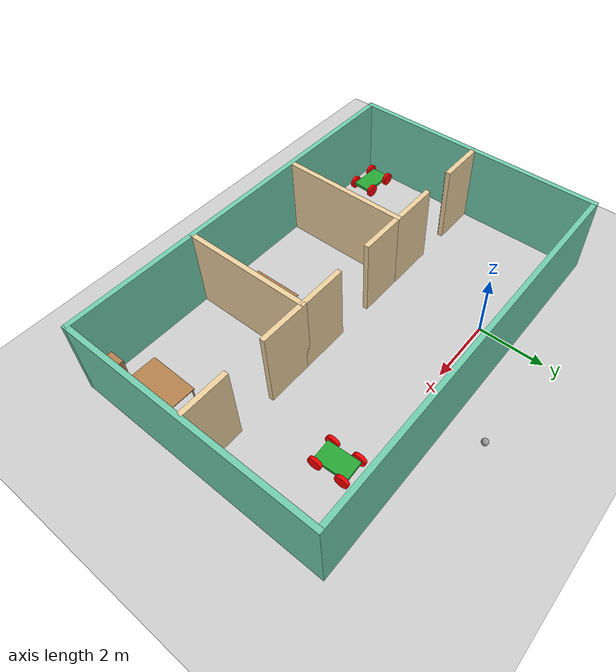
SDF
<sdf version="1.6">
 <world name="default">
  <plugin name="hello" filename="libwelcome_message.so"/>
  <light name="sun" type="directional">
   <pose>0 0 10 0 -0 0</pose>
   <diffuse>0.8 0.8 0.8 1</diffuse>
   <specular>0.2 0.2 0.2 1</specular>
   <attenuation>
    <range>1000</range>
    <constant>0.9</constant>
    <linear>0.01</linear>
    <quadratic>0.001</quadratic>
   </attenuation>
   <direction>-0.5 0.1 -0.9</direction>
  </light>
  <model name="ground_plane">
   <static>1</static>
   <link name="link">
    <collision name="collision">
     <geometry><plane><normal>0 0 1</normal><size>100 100</size></plane></geometry>
     <surface><friction><ode><mu>100</mu><mu2>50</mu2></ode></friction></surface>
    </collision>
    <visual name="visual">
     <cast_shadows>0</cast_shadows>
     <geometry><plane><normal>0 0 1</normal><size>100 100</size></plane></geometry>
     <material>
      <script><uri>file://media/materials/scripts/gazebo.material</uri><name>Gazebo/Grey</name></script>
     </material>
    </visual>
   </link>
  </model>
  <gravity>0 0 -9.8</gravity>
  <magnetic_field>6e-06 2.3e-05 -4.2e-05</magnetic_field>
  <atmosphere type="adiabatic"/>
  <physics name="default_physics" default="0" type="ode">
   <max_step_size>0.001</max_step_size>
   <real_time_factor>1</real_time_factor>
   <real_time_update_rate>1000</real_time_update_rate>
  </physics>
  <scene><ambient>0.4 0.4 0.4 1</ambient><background>0.7 0.7 0.7 1</background><shadows>1</shadows></scene>
  <spherical_coordinates>
   <surface_model>EARTH_WGS84</surface_model>
   <latitude_deg>0</latitude_deg>
   <longitude_deg>0</longitude_deg>
   <elevation>0</elevation>
   <heading_deg>0</heading_deg>
  </spherical_coordinates>
  <model name="RobotOffice">
   <pose>1.99675 -2.98962 0 0 -0 0</pose>
   <link name="Wall_17">
    <collision name="Wall_17_Collision">
     <geometry><box><size>12.0004 0.15 2.5</size></box></geometry>
     <pose>0 0 1.25 0 -0 0</pose>
    </collision>
    <visual name="Wall_17_Visual">
     <pose>0 0 1.25 0 -0 0</pose>
     <geometry><box><size>12.0004 0.15 2.5</size></box></geometry>
     <material>
      <script><uri>file://media/materials/scripts/gazebo.material</uri><name>Gazebo/Grey</name></script>
      <ambient>0.435294 0.796078 0.67451 1</ambient>
     </material>
     <meta><layer>0</layer></meta>
    </visual>
    <pose>-2e-06 3.925 0 0 0 -3.14159</pose>
   </link>
   <link name="Wall_19">
    <collision name="Wall_19_Collision">
     <geometry><box><size>8 0.15 2.5</size></box></geometry>
     <pose>0 0 1.25 0 -0 0</pose>
    </collision>
    <visual name="Wall_19_Visual">
     <pose>0 0 1.25 0 -0 0</pose>
     <geometry><box><size>8 0.15 2.5</size></box></geometry>
     <material>
      <script><uri>file://media/materials/scripts/gazebo.material</uri><name>Gazebo/Grey</name></script>
      <ambient>0.435294 0.796078 0.67451 1</ambient>
     </material>
     <meta><layer>0</layer></meta>
    </visual>
    <pose>-5.92522 -3.8e-05 0 0 0 -1.5708</pose>
   </link>
   <link name="Wall_20">
    <collision name="Wall_20_Collision">
     <geometry><box><size>12 0.15 2.5</size></box></geometry>
     <pose>0 0 1.25 0 -0 0</pose>
    </collision>
    <visual name="Wall_20_Visual">
     <pose>0 0 1.25 0 -0 0</pose>
     <geometry><box><size>12 0.15 2.5</size></box></geometry>
     <material>
      <script><uri>file://media/materials/scripts/gazebo.material</uri><name>Gazebo/Grey</name></script>
      <ambient>0.435294 0.796078 0.67451 1</ambient>
     </material>
     <meta><layer>0</layer></meta>
    </visual>
    <pose>-0.000217 -3.92504 0 0 -0 0</pose>
   </link>
   <link name="Wall_21">
    <collision name="Wall_21_Collision">
     <geometry><box><size>8 0.15 2.5</size></box></geometry>
     <pose>0 0 1.25 0 -0 0</pose>
    </collision>
    <visual name="Wall_21_Visual">
     <pose>0 0 1.25 0 -0 0</pose>
     <geometry><box><size>8 0.15 2.5</size></box></geometry>
     <material>
      <script><uri>file://media/materials/scripts/gazebo.material</uri><name>Gazebo/Grey</name></script>
      <ambient>0.435294 0.796078 0.67451 1</ambient>
     </material>
     <meta><layer>0</layer></meta>
    </visual>
    <pose>5.925 0 0 0 -0 1.57074</pose>
   </link>
   <link name="Wall_27">
    <collision name="Wall_27_Collision">
     <geometry><box><size>1.5 0.15 2.5</size></box></geometry>
     <pose>0 0 1.25 0 -0 0</pose>
    </collision>
    <visual name="Wall_27_Visual">
     <pose>0 0 1.25 0 -0 0</pose>
     <geometry><box><size>1.5 0.15 2.5</size></box></geometry>
     <material>
      <script><uri>file://media/materials/scripts/gazebo.material</uri><name>Gazebo/Grey</name></script>
      <ambient>0.921569 0.807843 0.615686 1</ambient>
     </material>
     <meta><layer>0</layer></meta>
    </visual>
    <pose>-5.24522 -0.018038 0 0 -0 0</pose>
   </link>
   <link name="Wall_29">
    <collision name="Wall_29_Collision">
     <geometry><box><size>1.51521 0.15 2.5</size></box></geometry>
     <pose>0 0 1.25 0 -0 0</pose>
    </collision>
    <visual name="Wall_29_Visual">
     <pose>0 0 1.25 0 -0 0</pose>
     <geometry><box><size>1.51521 0.15 2.5</size></box></geometry>
     <material>
      <script><uri>file://media/materials/scripts/gazebo.material</uri><name>Gazebo/Grey</name></script>
      <ambient>0.921569 0.807843 0.615686 1</ambient>
     </material>
     <meta><layer>0</layer></meta>
    </visual>
    <pose>-2.71606 -0.018038 0 0 -0 0</pose>
   </link>
   <link name="Wall_31">
    <collision name="Wall_31_Collision">
     <geometry><box><size>0.15 0.15 2.5</size></box></geometry>
     <pose>0 0 1.25 0 -0 0</pose>
    </collision>
    <visual name="Wall_31_Visual">
     <pose>0 0 1.25 0 -0 0</pose>
     <geometry><box><size>0.15 0.15 2.5</size></box></geometry>
     <material>
      <script><uri>file://media/materials/scripts/gazebo.material</uri><name>Gazebo/Grey</name></script>
      <ambient>1 1 1 1</ambient>
     </material>
     <meta><layer>0</layer></meta>
    </visual>
    <pose>-4.57022 -0.029538 0 0 -0 0</pose>
   </link>
   <link name="Wall_34">
    <collision name="Wall_34_Collision">
     <geometry><box><size>4 0.15 2.5</size></box></geometry>
     <pose>0 0 1.25 0 -0 0</pose>
    </collision>
    <visual name="Wall_34_Visual">
     <pose>0 0 1.25 0 -0 0</pose>
     <geometry><box><size>4 0.15 2.5</size></box></geometry>
     <material>
      <script><uri>file://media/materials/scripts/gazebo.material</uri><name>Gazebo/Grey</name></script>
      <ambient>0.921569 0.807843 0.615686 1</ambient>
     </material>
     <meta><layer>0</layer></meta>
    </visual>
    <pose>-2.03322 -1.94304 0 0 0 -1.5708</pose>
   </link>
   <link name="Wall_36">
    <collision name="Wall_36_Collision">
     <geometry><box><size>1.5 0.15 2.5</size></box></geometry>
     <pose>0 0 1.25 0 -0 0</pose>
    </collision>
    <visual name="Wall_36_Visual">
     <pose>0 0 1.25 0 -0 0</pose>
     <geometry><box><size>1.5 0.15 2.5</size></box></geometry>
     <material>
      <script><uri>file://media/materials/scripts/gazebo.material</uri><name>Gazebo/Grey</name></script>
      <ambient>0.921569 0.807843 0.615686 1</ambient>
     </material>
     <meta><layer>0</layer></meta>
    </visual>
    <pose>-1.35845 -0.018038 0 0 -0 0</pose>
   </link>
   <link name="Wall_43">
    <collision name="Wall_43_Collision">
     <geometry><box><size>1.5 0.15 2.5</size></box></geometry>
     <pose>0 0 1.25 0 -0 0</pose>
    </collision>
    <visual name="Wall_43_Visual">
     <pose>0 0 1.25 0 -0 0</pose>
     <geometry><box><size>1.5 0.15 2.5</size></box></geometry>
     <material>
      <script><uri>file://media/materials/scripts/gazebo.material</uri><name>Gazebo/Grey</name></script>
      <ambient>0.921569 0.807843 0.615686 1</ambient>
     </material>
     <meta><layer>0</layer></meta>
    </visual>
    <pose>5.23878 -0.018038 0 0 -0 0</pose>
   </link>
   <link name="Wall_45">
    <collision name="Wall_45_Collision">
     <geometry><box><size>4 0.15 2.5</size></box></geometry>
     <pose>0 0 1.25 0 -0 0</pose>
    </collision>
    <visual name="Wall_45_Visual">
     <pose>0 0 1.25 0 -0 0</pose>
     <geometry><box><size>4 0.15 2.5</size></box></geometry>
     <material>
      <script><uri>file://media/materials/scripts/gazebo.material</uri><name>Gazebo/Grey</name></script>
      <ambient>0.921569 0.807843 0.615686 1</ambient>
     </material>
     <meta><layer>0</layer></meta>
    </visual>
    <pose>1.92178 -1.94304 0 0 0 -1.5708</pose>
   </link>
   <link name="Wall_47">
    <collision name="Wall_47_Collision">
     <geometry><box><size>1.5 0.15 2.5</size></box></geometry>
     <pose>0 0 1.25 0 -0 0</pose>
    </collision>
    <visual name="Wall_47_Visual">
     <pose>0 0 1.25 0 -0 0</pose>
     <geometry><box><size>1.5 0.15 2.5</size></box></geometry>
     <material>
      <script><uri>file://media/materials/scripts/gazebo.material</uri><name>Gazebo/Grey</name></script>
      <ambient>0.921569 0.807843 0.615686 1</ambient>
     </material>
     <meta><layer>0</layer></meta>
    </visual>
    <pose>1.24678 -0.018038 0 0 -0 0</pose>
   </link>
   <link name="Wall_51">
    <collision name="Wall_51_Collision">
     <geometry><box><size>1.5 0.15 2.5</size></box></geometry>
     <pose>0 0 1.25 0 -0 0</pose>
    </collision>
    <visual name="Wall_51_Visual">
     <pose>0 0 1.25 0 -0 0</pose>
     <geometry><box><size>1.5 0.15 2.5</size></box></geometry>
     <material>
      <script><uri>file://media/materials/scripts/gazebo.material</uri><name>Gazebo/Grey</name></script>
      <ambient>0.921569 0.807843 0.615686 1</ambient>
     </material>
     <meta><layer>0</layer></meta>
    </visual>
    <pose>2.59678 -0.018038 0 0 -0 0</pose>
   </link>
   <static>1</static>
  </model>
  <model name="table">
   <static>1</static>
   <link name="link">
    <collision name="surface">
     <pose>0 0 1 0 -0 0</pose>
     <geometry><box><size>1.5 0.8 0.03</size></box></geometry>
     <surface><friction><ode><mu>0.6</mu><mu2>0.6</mu2></ode></friction></surface>
    </collision>
    <visual name="visual1">
     <pose>0 0 1 0 -0 0</pose>
     <geometry><box><size>1.5 0.8 0.03</size></box></geometry>
     <material>
      <script><uri>file://media/materials/scripts/gazebo.material</uri><name>Gazebo/Wood</name></script>
     </material>
    </visual>
    <collision name="front_left_leg">
     <pose>0.68 0.38 0.5 0 -0 0</pose>
     <geometry><cylinder><radius>0.02</radius><length>1</length></cylinder></geometry>
    </collision>
    <visual name="front_left_leg">
     <pose>0.68 0.38 0.5 0 -0 0</pose>
     <geometry><cylinder><radius>0.02</radius><length>1</length></cylinder></geometry>
     <material>
      <script><uri>file://media/materials/scripts/gazebo.material</uri><name>Gazebo/Grey</name></script>
     </material>
    </visual>
    <collision name="front_right_leg">
     <pose>0.68 -0.38 0.5 0 -0 0</pose>
     <geometry><cylinder><radius>0.02</radius><length>1</length></cylinder></geometry>
    </collision>
    <visual name="front_right_leg">
     <pose>0.68 -0.38 0.5 0 -0 0</pose>
     <geometry><cylinder><radius>0.02</radius><length>1</length></cylinder></geometry>
     <material>
      <script><uri>file://media/materials/scripts/gazebo.material</uri><name>Gazebo/Grey</name></script>
     </material>
    </visual>
    <collision name="back_right_leg">
     <pose>-0.68 -0.38 0.5 0 -0 0</pose>
     <geometry><cylinder><radius>0.02</radius><length>1</length></cylinder></geometry>
    </collision>
    <visual name="back_right_leg">
     <pose>-0.68 -0.38 0.5 0 -0 0</pose>
     <geometry><cylinder><radius>0.02</radius><length>1</length></cylinder></geometry>
     <material>
      <script><uri>file://media/materials/scripts/gazebo.material</uri><name>Gazebo/Grey</name></script>
     </material>
    </visual>
    <collision name="back_left_leg">
     <pose>-0.68 0.38 0.5 0 -0 0</pose>
     <geometry><cylinder><radius>0.02</radius><length>1</length></cylinder></geometry>
    </collision>
    <visual name="back_left_leg">
     <pose>-0.68 0.38 0.5 0 -0 0</pose>
     <geometry><cylinder><radius>0.02</radius><length>1</length></cylinder></geometry>
     <material>
      <script><uri>file://media/materials/scripts/gazebo.material</uri><name>Gazebo/Grey</name></script>
     </material>
    </visual>
   </link>
   <pose>-0.686976 -4.90058 0 0 -0 1.5675</pose>
  </model>
  <model name="table_0">
   <static>1</static>
   <link name="link">
    <collision name="surface">
     <pose>0 0 1 0 -0 0</pose>
     <geometry><box><size>1.5 0.8 0.03</size></box></geometry>
     <surface><friction><ode><mu>0.6</mu><mu2>0.6</mu2></ode></friction></surface>
    </collision>
    <visual name="visual1">
     <pose>0 0 1 0 -0 0</pose>
     <geometry><box><size>1.5 0.8 0.03</size></box></geometry>
     <material>
      <script><uri>file://media/materials/scripts/gazebo.material</uri><name>Gazebo/Wood</name></script>
     </material>
    </visual>
    <collision name="front_left_leg">
     <pose>0.68 0.38 0.5 0 -0 0</pose>
     <geometry><cylinder><radius>0.02</radius><length>1</length></cylinder></geometry>
    </collision>
    <visual name="front_left_leg">
     <pose>0.68 0.38 0.5 0 -0 0</pose>
     <geometry><cylinder><radius>0.02</radius><length>1</length></cylinder></geometry>
     <material>
      <script><uri>file://media/materials/scripts/gazebo.material</uri><name>Gazebo/Grey</name></script>
     </material>
    </visual>
    <collision name="front_right_leg">
     <pose>0.68 -0.38 0.5 0 -0 0</pose>
     <geometry><cylinder><radius>0.02</radius><length>1</length></cylinder></geometry>
    </collision>
    <visual name="front_right_leg">
     <pose>0.68 -0.38 0.5 0 -0 0</pose>
     <geometry><cylinder><radius>0.02</radius><length>1</length></cylinder></geometry>
     <material>
      <script><uri>file://media/materials/scripts/gazebo.material</uri><name>Gazebo/Grey</name></script>
     </material>
    </visual>
    <collision name="back_right_leg">
     <pose>-0.68 -0.38 0.5 0 -0 0</pose>
     <geometry><cylinder><radius>0.02</radius><length>1</length></cylinder></geometry>
    </collision>
    <visual name="back_right_leg">
     <pose>-0.68 -0.38 0.5 0 -0 0</pose>
     <geometry><cylinder><radius>0.02</radius><length>1</length></cylinder></geometry>
     <material>
      <script><uri>file://media/materials/scripts/gazebo.material</uri><name>Gazebo/Grey</name></script>
     </material>
    </visual>
    <collision name="back_left_leg">
     <pose>-0.68 0.38 0.5 0 -0 0</pose>
     <geometry><cylinder><radius>0.02</radius><length>1</length></cylinder></geometry>
    </collision>
    <visual name="back_left_leg">
     <pose>-0.68 0.38 0.5 0 -0 0</pose>
     <geometry><cylinder><radius>0.02</radius><length>1</length></cylinder></geometry>
     <material>
      <script><uri>file://media/materials/scripts/gazebo.material</uri><name>Gazebo/Grey</name></script>
     </material>
    </visual>
   </link>
   <pose>7.10305 -4.92208 0 0 -0 1.55537</pose>
  </model>
  <model name="cabinet">
   <static>1</static>
   <link name="cabinet_bottom_plate">
    <inertial>
     <pose>0 0 -1 0 -0 0</pose>
     <inertia><ixx>2.05</ixx><ixy>0</ixy><ixz>0</ixz><iyy>2.05</iyy><iyz>0</iyz><izz>2.05</izz></inertia>
     <mass>25</mass>
    </inertial>
    <collision name="cabinet_bottom_plate_geom">
     <pose>0 0 0.01 0 -0 0</pose>
     <geometry><box><size>0.45 0.45 0.02</size></box></geometry>
    </collision>
    <visual name="cabinet_bottom_plate_geom_visual">
     <pose>0 0 0.01 0 -0 0</pose>
     <geometry><box><size>0.45 0.45 0.02</size></box></geometry>
     <material>
      <script><uri>file://media/materials/scripts/gazebo.material</uri><name>Gazebo/Wood</name></script>
     </material>
    </visual>
    <collision name="cabinet_bottom_plate_geom_cabinet_back_plate">
     <pose>0.235 0 0.51 0 -0 0</pose>
     <geometry><box><size>0.02 0.45 1.02</size></box></geometry>
    </collision>
    <visual name="cabinet_bottom_plate_geom_cabinet_back_plate_visual">
     <pose>0.235 0 0.51 0 -0 0</pose>
     <geometry><box><size>0.02 0.45 1.02</size></box></geometry>
     <material>
      <script><uri>file://media/materials/scripts/gazebo.material</uri><name>Gazebo/Wood</name></script>
     </material>
    </visual>
    <collision name="cabinet_bottom_plate_geom_cabinet_left_plate">
     <pose>0 0.235 0.51 0 -0 0</pose>
     <geometry><box><size>0.45 0.02 1.02</size></box></geometry>
    </collision>
    <visual name="cabinet_bottom_plate_geom_cabinet_left_plate_visual">
     <pose>0 0.235 0.51 0 -0 0</pose>
     <geometry><box><size>0.45 0.02 1.02</size></box></geometry>
     <material>
      <script><uri>file://media/materials/scripts/gazebo.material</uri><name>Gazebo/Wood</name></script>
     </material>
    </visual>
    <collision name="cabinet_bottom_plate_geom_cabinet_middle_plate">
     <pose>0 0 0.51 0 -0 0</pose>
     <geometry><box><size>0.45 0.45 0.02</size></box></geometry>
    </collision>
    <visual name="cabinet_bottom_plate_geom_cabinet_middle_plate_visual">
     <pose>0 0 0.51 0 -0 0</pose>
     <geometry><box><size>0.45 0.45 0.02</size></box></geometry>
     <material>
      <script><uri>file://media/materials/scripts/gazebo.material</uri><name>Gazebo/Wood</name></script>
     </material>
    </visual>
    <collision name="cabinet_bottom_plate_geom_cabinet_right_plate">
     <pose>0 -0.235 0.51 0 -0 0</pose>
     <geometry><box><size>0.45 0.02 1.02</size></box></geometry>
    </collision>
    <visual name="cabinet_bottom_plate_geom_cabinet_right_plate_visual">
     <pose>0 -0.235 0.51 0 -0 0</pose>
     <geometry><box><size>0.45 0.02 1.02</size></box></geometry>
     <material>
      <script><uri>file://media/materials/scripts/gazebo.material</uri><name>Gazebo/Wood</name></script>
     </material>
    </visual>
    <collision name="cabinet_bottom_plate_geom_cabinet_top_plate">
     <pose>0 0 1.01 0 -0 0</pose>
     <geometry><box><size>0.45 0.45 0.02</size></box></geometry>
    </collision>
    <visual name="cabinet_bottom_plate_geom_cabinet_top_plate_visual">
     <pose>0 0 1.01 0 -0 0</pose>
     <geometry><box><size>0.45 0.45 0.02</size></box></geometry>
     <material>
      <script><uri>file://media/materials/scripts/gazebo.material</uri><name>Gazebo/Wood</name></script>
     </material>
    </visual>
   </link>
   <pose>7.48966 -6.42378 0 0 -0 0</pose>
  </model>
  <model name="cabinet_0">
   <static>1</static>
   <link name="cabinet_bottom_plate">
    <inertial>
     <pose>0 0 -1 0 -0 0</pose>
     <inertia><ixx>2.05</ixx><ixy>0</ixy><ixz>0</ixz><iyy>2.05</iyy><iyz>0</iyz><izz>2.05</izz></inertia>
     <mass>25</mass>
    </inertial>
    <collision name="cabinet_bottom_plate_geom">
     <pose>0 0 0.01 0 -0 0</pose>
     <geometry><box><size>0.45 0.45 0.02</size></box></geometry>
    </collision>
    <visual name="cabinet_bottom_plate_geom_visual">
     <pose>0 0 0.01 0 -0 0</pose>
     <geometry><box><size>0.45 0.45 0.02</size></box></geometry>
     <material>
      <script><uri>file://media/materials/scripts/gazebo.material</uri><name>Gazebo/Wood</name></script>
     </material>
    </visual>
    <collision name="cabinet_bottom_plate_geom_cabinet_back_plate">
     <pose>0.235 0 0.51 0 -0 0</pose>
     <geometry><box><size>0.02 0.45 1.02</size></box></geometry>
    </collision>
    <visual name="cabinet_bottom_plate_geom_cabinet_back_plate_visual">
     <pose>0.235 0 0.51 0 -0 0</pose>
     <geometry><box><size>0.02 0.45 1.02</size></box></geometry>
     <material>
      <script><uri>file://media/materials/scripts/gazebo.material</uri><name>Gazebo/Wood</name></script>
     </material>
    </visual>
    <collision name="cabinet_bottom_plate_geom_cabinet_left_plate">
     <pose>0 0.235 0.51 0 -0 0</pose>
     <geometry><box><size>0.45 0.02 1.02</size></box></geometry>
    </collision>
    <visual name="cabinet_bottom_plate_geom_cabinet_left_plate_visual">
     <pose>0 0.235 0.51 0 -0 0</pose>
     <geometry><box><size>0.45 0.02 1.02</size></box></geometry>
     <material>
      <script><uri>file://media/materials/scripts/gazebo.material</uri><name>Gazebo/Wood</name></script>
     </material>
    </visual>
    <collision name="cabinet_bottom_plate_geom_cabinet_middle_plate">
     <pose>0 0 0.51 0 -0 0</pose>
     <geometry><box><size>0.45 0.45 0.02</size></box></geometry>
    </collision>
    <visual name="cabinet_bottom_plate_geom_cabinet_middle_plate_visual">
     <pose>0 0 0.51 0 -0 0</pose>
     <geometry><box><size>0.45 0.45 0.02</size></box></geometry>
     <material>
      <script><uri>file://media/materials/scripts/gazebo.material</uri><name>Gazebo/Wood</name></script>
     </material>
    </visual>
    <collision name="cabinet_bottom_plate_geom_cabinet_right_plate">
     <pose>0 -0.235 0.51 0 -0 0</pose>
     <geometry><box><size>0.45 0.02 1.02</size></box></geometry>
    </collision>
    <visual name="cabinet_bottom_plate_geom_cabinet_right_plate_visual">
     <pose>0 -0.235 0.51 0 -0 0</pose>
     <geometry><box><size>0.45 0.02 1.02</size></box></geometry>
     <material>
      <script><uri>file://media/materials/scripts/gazebo.material</uri><name>Gazebo/Wood</name></script>
     </material>
    </visual>
    <collision name="cabinet_bottom_plate_geom_cabinet_top_plate">
     <pose>0 0 1.01 0 -0 0</pose>
     <geometry><box><size>0.45 0.45 0.02</size></box></geometry>
    </collision>
    <visual name="cabinet_bottom_plate_geom_cabinet_top_plate_visual">
     <pose>0 0 1.01 0 -0 0</pose>
     <geometry><box><size>0.45 0.45 0.02</size></box></geometry>
     <material>
      <script><uri>file://media/materials/scripts/gazebo.material</uri><name>Gazebo/Wood</name></script>
     </material>
    </visual>
   </link>
   <pose>-0.558481 -6.35168 0 0 -0 0</pose>
  </model>
  <model name="cabinet_clone">
   <static>1</static>
   <link name="cabinet_bottom_plate">
    <inertial>
     <pose>0 0 -1 0 -0 0</pose>
     <inertia><ixx>2.05</ixx><ixy>0</ixy><ixz>0</ixz><iyy>2.05</iyy><iyz>0</iyz><izz>2.05</izz></inertia>
     <mass>25</mass>
    </inertial>
    <collision name="cabinet_bottom_plate_geom">
     <pose>0 0 0.01 0 -0 0</pose>
     <geometry><box><size>0.45 0.45 0.02</size></box></geometry>
    </collision>
    <visual name="cabinet_bottom_plate_geom_visual">
     <pose>0 0 0.01 0 -0 0</pose>
     <geometry><box><size>0.45 0.45 0.02</size></box></geometry>
     <material>
      <script><uri>file://media/materials/scripts/gazebo.material</uri><name>Gazebo/Wood</name></script>
     </material>
    </visual>
    <collision name="cabinet_bottom_plate_geom_cabinet_back_plate">
     <pose>0.235 0 0.51 0 -0 0</pose>
     <geometry><box><size>0.02 0.45 1.02</size></box></geometry>
    </collision>
    <visual name="cabinet_bottom_plate_geom_cabinet_back_plate_visual">
     <pose>0.235 0 0.51 0 -0 0</pose>
     <geometry><box><size>0.02 0.45 1.02</size></box></geometry>
     <material>
      <script><uri>file://media/materials/scripts/gazebo.material</uri><name>Gazebo/Wood</name></script>
     </material>
    </visual>
    <collision name="cabinet_bottom_plate_geom_cabinet_left_plate">
     <pose>0 0.235 0.51 0 -0 0</pose>
     <geometry><box><size>0.45 0.02 1.02</size></box></geometry>
    </collision>
    <visual name="cabinet_bottom_plate_geom_cabinet_left_plate_visual">
     <pose>0 0.235 0.51 0 -0 0</pose>
     <geometry><box><size>0.45 0.02 1.02</size></box></geometry>
     <material>
      <script><uri>file://media/materials/scripts/gazebo.material</uri><name>Gazebo/Wood</name></script>
     </material>
    </visual>
    <collision name="cabinet_bottom_plate_geom_cabinet_middle_plate">
     <pose>0 0 0.51 0 -0 0</pose>
     <geometry><box><size>0.45 0.45 0.02</size></box></geometry>
    </collision>
    <visual name="cabinet_bottom_plate_geom_cabinet_middle_plate_visual">
     <pose>0 0 0.51 0 -0 0</pose>
     <geometry><box><size>0.45 0.45 0.02</size></box></geometry>
     <material>
      <script><uri>file://media/materials/scripts/gazebo.material</uri><name>Gazebo/Wood</name></script>
     </material>
    </visual>
    <collision name="cabinet_bottom_plate_geom_cabinet_right_plate">
     <pose>0 -0.235 0.51 0 -0 0</pose>
     <geometry><box><size>0.45 0.02 1.02</size></box></geometry>
    </collision>
    <visual name="cabinet_bottom_plate_geom_cabinet_right_plate_visual">
     <pose>0 -0.235 0.51 0 -0 0</pose>
     <geometry><box><size>0.45 0.02 1.02</size></box></geometry>
     <material>
      <script><uri>file://media/materials/scripts/gazebo.material</uri><name>Gazebo/Wood</name></script>
     </material>
    </visual>
    <collision name="cabinet_bottom_plate_geom_cabinet_top_plate">
     <pose>0 0 1.01 0 -0 0</pose>
     <geometry><box><size>0.45 0.45 0.02</size></box></geometry>
    </collision>
    <visual name="cabinet_bottom_plate_geom_cabinet_top_plate_visual">
     <pose>0 0 1.01 0 -0 0</pose>
     <geometry><box><size>0.45 0.45 0.02</size></box></geometry>
     <material>
      <script><uri>file://media/materials/scripts/gazebo.material</uri><name>Gazebo/Wood</name></script>
     </material>
    </visual>
   </link>
   <pose>3.38166 -6.45906 0 0 -0 0</pose>
  </model>
  <model name="table_0_clone">
   <static>1</static>
   <link name="link">
    <collision name="surface">
     <pose>0 0 1 0 -0 0</pose>
     <geometry><box><size>1.5 0.8 0.03</size></box></geometry>
     <surface><friction><ode><mu>0.6</mu><mu2>0.6</mu2></ode></friction></surface>
    </collision>
    <visual name="visual1">
     <pose>0 0 1 0 -0 0</pose>
     <geometry><box><size>1.5 0.8 0.03</size></box></geometry>
     <material>
      <script><uri>file://media/materials/scripts/gazebo.material</uri><name>Gazebo/Wood</name></script>
     </material>
    </visual>
    <collision name="front_left_leg">
     <pose>0.68 0.38 0.5 0 -0 0</pose>
     <geometry><cylinder><radius>0.02</radius><length>1</length></cylinder></geometry>
    </collision>
    <visual name="front_left_leg">
     <pose>0.68 0.38 0.5 0 -0 0</pose>
     <geometry><cylinder><radius>0.02</radius><length>1</length></cylinder></geometry>
     <material>
      <script><uri>file://media/materials/scripts/gazebo.material</uri><name>Gazebo/Grey</name></script>
     </material>
    </visual>
    <collision name="front_right_leg">
     <pose>0.68 -0.38 0.5 0 -0 0</pose>
     <geometry><cylinder><radius>0.02</radius><length>1</length></cylinder></geometry>
    </collision>
    <visual name="front_right_leg">
     <pose>0.68 -0.38 0.5 0 -0 0</pose>
     <geometry><cylinder><radius>0.02</radius><length>1</length></cylinder></geometry>
     <material>
      <script><uri>file://media/materials/scripts/gazebo.material</uri><name>Gazebo/Grey</name></script>
     </material>
    </visual>
    <collision name="back_right_leg">
     <pose>-0.68 -0.38 0.5 0 -0 0</pose>
     <geometry><cylinder><radius>0.02</radius><length>1</length></cylinder></geometry>
    </collision>
    <visual name="back_right_leg">
     <pose>-0.68 -0.38 0.5 0 -0 0</pose>
     <geometry><cylinder><radius>0.02</radius><length>1</length></cylinder></geometry>
     <material>
      <script><uri>file://media/materials/scripts/gazebo.material</uri><name>Gazebo/Grey</name></script>
     </material>
    </visual>
    <collision name="back_left_leg">
     <pose>-0.68 0.38 0.5 0 -0 0</pose>
     <geometry><cylinder><radius>0.02</radius><length>1</length></cylinder></geometry>
    </collision>
    <visual name="back_left_leg">
     <pose>-0.68 0.38 0.5 0 -0 0</pose>
     <geometry><cylinder><radius>0.02</radius><length>1</length></cylinder></geometry>
     <material>
      <script><uri>file://media/materials/scripts/gazebo.material</uri><name>Gazebo/Grey</name></script>
     </material>
    </visual>
   </link>
   <pose>3.25344 -4.95121 0 0 -0 1.57871</pose>
  </model>
  <model name="ServiceRobot">
   <link name="link_0">
    <inertial>
     <mass>1</mass>
     <inertia>
      <ixx>0.166667</ixx>
      <ixy>0</ixy>
      <ixz>0</ixz>
      <iyy>0.166667</iyy>
      <iyz>0</iyz>
      <izz>0.166667</izz>
     </inertia>
    </inertial>
    <visual name="visual">
     <geometry><box><size>1 0.6 0.1</size></box></geometry>
     <material>
      <lighting>1</lighting>
      <script><uri>file://media/materials/scripts/gazebo.material</uri><name>Gazebo/Green</name></script>
      <shader type="pixel"><normal_map>__default__</normal_map></shader>
      <ambient>0 1 0 1</ambient>
      <diffuse>0.7 0.7 0.7 1</diffuse>
      <specular>0.01 0.01 0.01 1</specular>
      <emissive>0 0 0 1</emissive>
     </material>
    </visual>
    <collision name="collision">
     <geometry><box><size>1 0.6 0.1</size></box></geometry>
     <surface>
      <friction>
       <ode><mu>1</mu><mu2>1</mu2><fdir1>0 0 0</fdir1><slip1>0</slip1><slip2>0</slip2></ode>
       <torsional>
        <coefficient>1</coefficient>
        <patch_radius>0</patch_radius>
        <surface_radius>0</surface_radius>
        <use_patch_radius>1</use_patch_radius>
        <ode><slip>0</slip></ode>
       </torsional>
      </friction>
      <bounce><restitution_coefficient>0</restitution_coefficient><threshold>1e+06</threshold></bounce>
      <contact>
       <collide_without_contact>0</collide_without_contact>
       <collide_without_contact_bitmask>1</collide_without_contact_bitmask>
       <collide_bitmask>1</collide_bitmask>
       <ode>
        <soft_cfm>0</soft_cfm>
        <soft_erp>0.2</soft_erp>
        <kp>1e+13</kp>
        <kd>1</kd>
        <max_vel>0.01</max_vel>
        <min_depth>0</min_depth>
       </ode>
       <bullet>
        <split_impulse>1</split_impulse>
        <split_impulse_penetration_threshold>-0.01</split_impulse_penetration_threshold>
        <soft_cfm>0</soft_cfm>
        <soft_erp>0.2</soft_erp>
        <kp>1e+13</kp>
        <kd>1</kd>
       </bullet>
      </contact>
     </surface>
    </collision>
   </link>
   <link name="link_1">
    <pose>0.4 -0.35 0 1.57 -0 0</pose>
    <inertial>
     <mass>1</mass>
     <inertia><ixx>0.145833</ixx><ixy>0</ixy><ixz>0</ixz><iyy>0.145833</iyy><iyz>0</iyz><izz>0.125</izz></inertia>
    </inertial>
    <visual name="visual">
     <geometry><cylinder><radius>0.2</radius><length>0.1</length></cylinder></geometry>
     <material>
      <lighting>1</lighting>
      <script><uri>file://media/materials/scripts/gazebo.material</uri><name>Gazebo/Grey</name></script>
      <shader type="pixel"><normal_map>__default__</normal_map></shader>
      <ambient>1 0 0 1</ambient>
      <diffuse>0.7 0.7 0.7 1</diffuse>
      <specular>0.01 0.01 0.01 1</specular>
      <emissive>0 0 0 1</emissive>
     </material>
    </visual>
    <collision name="collision">
     <geometry><cylinder><radius>0.2</radius><length>0.1</length></cylinder></geometry>
     <surface>
      <friction>
       <ode><mu>1</mu><mu2>1</mu2><fdir1>0 0 0</fdir1><slip1>0</slip1><slip2>0</slip2></ode>
       <torsional>
        <coefficient>1</coefficient>
        <patch_radius>0</patch_radius>
        <surface_radius>0</surface_radius>
        <use_patch_radius>1</use_patch_radius>
        <ode><slip>0</slip></ode>
       </torsional>
      </friction>
      <bounce><restitution_coefficient>0</restitution_coefficient><threshold>1e+06</threshold></bounce>
      <contact>
       <collide_without_contact>0</collide_without_contact>
       <collide_without_contact_bitmask>1</collide_without_contact_bitmask>
       <collide_bitmask>1</collide_bitmask>
       <ode>
        <soft_cfm>0</soft_cfm>
        <soft_erp>0.2</soft_erp>
        <kp>1e+13</kp>
        <kd>1</kd>
        <max_vel>0.01</max_vel>
        <min_depth>0</min_depth>
       </ode>
       <bullet>
        <split_impulse>1</split_impulse>
        <split_impulse_penetration_threshold>-0.01</split_impulse_penetration_threshold>
        <soft_cfm>0</soft_cfm>
        <soft_erp>0.2</soft_erp>
        <kp>1e+13</kp>
        <kd>1</kd>
       </bullet>
      </contact>
     </surface>
    </collision>
   </link>
   <link name="link_1_clone">
    <pose>0.4 0.35 -0 1.57 -0 0</pose>
    <inertial>
     <mass>1</mass>
     <inertia><ixx>0.145833</ixx><ixy>0</ixy><ixz>0</ixz><iyy>0.145833</iyy><iyz>0</iyz><izz>0.125</izz></inertia>
    </inertial>
    <visual name="visual">
     <geometry><cylinder><radius>0.2</radius><length>0.1</length></cylinder></geometry>
     <material>
      <lighting>1</lighting>
      <script><uri>file://media/materials/scripts/gazebo.material</uri><name>Gazebo/Grey</name></script>
      <shader type="pixel"><normal_map>__default__</normal_map></shader>
      <ambient>1 0 0 1</ambient>
      <diffuse>0.7 0.7 0.7 1</diffuse>
      <specular>0.01 0.01 0.01 1</specular>
      <emissive>0 0 0 1</emissive>
     </material>
    </visual>
    <collision name="collision">
     <geometry><cylinder><radius>0.2</radius><length>0.1</length></cylinder></geometry>
     <surface>
      <friction>
       <ode><mu>1</mu><mu2>1</mu2><fdir1>0 0 0</fdir1><slip1>0</slip1><slip2>0</slip2></ode>
       <torsional>
        <coefficient>1</coefficient>
        <patch_radius>0</patch_radius>
        <surface_radius>0</surface_radius>
        <use_patch_radius>1</use_patch_radius>
        <ode><slip>0</slip></ode>
       </torsional>
      </friction>
      <bounce><restitution_coefficient>0</restitution_coefficient><threshold>1e+06</threshold></bounce>
      <contact>
       <collide_without_contact>0</collide_without_contact>
       <collide_without_contact_bitmask>1</collide_without_contact_bitmask>
       <collide_bitmask>1</collide_bitmask>
       <ode>
        <soft_cfm>0</soft_cfm>
        <soft_erp>0.2</soft_erp>
        <kp>1e+13</kp>
        <kd>1</kd>
        <max_vel>0.01</max_vel>
        <min_depth>0</min_depth>
       </ode>
       <bullet>
        <split_impulse>1</split_impulse>
        <split_impulse_penetration_threshold>-0.01</split_impulse_penetration_threshold>
        <soft_cfm>0</soft_cfm>
        <soft_erp>0.2</soft_erp>
        <kp>1e+13</kp>
        <kd>1</kd>
       </bullet>
      </contact>
     </surface>
    </collision>
   </link>
   <link name="link_1_clone_0">
    <pose>-0.4 0.35 -0 1.57 -0 0</pose>
    <inertial>
     <mass>1</mass>
     <inertia><ixx>0.145833</ixx><ixy>0</ixy><ixz>0</ixz><iyy>0.145833</iyy><iyz>0</iyz><izz>0.125</izz></inertia>
     <pose>0 0 -0.1 0 -0 0</pose>
    </inertial>
    <visual name="visual">
     <geometry><cylinder><radius>0.2</radius><length>0.1</length></cylinder></geometry>
     <material>
      <lighting>1</lighting>
      <script><uri>file://media/materials/scripts/gazebo.material</uri><name>Gazebo/Grey</name></script>
      <shader type="pixel"><normal_map>__default__</normal_map></shader>
      <ambient>1 0 0 1</ambient>
      <diffuse>0.7 0.7 0.7 1</diffuse>
      <specular>0.01 0.01 0.01 1</specular>
      <emissive>0 0 0 1</emissive>
     </material>
    </visual>
    <collision name="collision">
     <geometry><cylinder><radius>0.2</radius><length>0.1</length></cylinder></geometry>
     <surface>
      <friction>
       <ode><mu>1</mu><mu2>1</mu2><fdir1>0 0 0</fdir1><slip1>0</slip1><slip2>0</slip2></ode>
       <torsional>
        <coefficient>1</coefficient>
        <patch_radius>0</patch_radius>
        <surface_radius>0</surface_radius>
        <use_patch_radius>1</use_patch_radius>
        <ode><slip>0</slip></ode>
       </torsional>
      </friction>
      <bounce><restitution_coefficient>0</restitution_coefficient><threshold>1e+06</threshold></bounce>
      <contact>
       <collide_without_contact>0</collide_without_contact>
       <collide_without_contact_bitmask>1</collide_without_contact_bitmask>
       <collide_bitmask>1</collide_bitmask>
       <ode>
        <soft_cfm>0</soft_cfm>
        <soft_erp>0.2</soft_erp>
        <kp>1e+13</kp>
        <kd>1</kd>
        <max_vel>0.01</max_vel>
        <min_depth>0</min_depth>
       </ode>
       <bullet>
        <split_impulse>1</split_impulse>
        <split_impulse_penetration_threshold>-0.01</split_impulse_penetration_threshold>
        <soft_cfm>0</soft_cfm>
        <soft_erp>0.2</soft_erp>
        <kp>1e+13</kp>
        <kd>1</kd>
       </bullet>
      </contact>
     </surface>
    </collision>
   </link>
   <link name="link_1_clone_1">
    <pose>-0.4 -0.35 0 1.57 -0 0</pose>
    <inertial>
     <mass>1</mass>
     <inertia><ixx>0.145833</ixx><ixy>0</ixy><ixz>0</ixz><iyy>0.145833</iyy><iyz>0</iyz><izz>0.125</izz></inertia>
    </inertial>
    <visual name="visual">
     <geometry><cylinder><radius>0.2</radius><length>0.1</length></cylinder></geometry>
     <material>
      <lighting>1</lighting>
      <script><uri>file://media/materials/scripts/gazebo.material</uri><name>Gazebo/Grey</name></script>
      <shader type="pixel"><normal_map>__default__</normal_map></shader>
      <ambient>1 0 0 1</ambient>
      <diffuse>0.7 0.7 0.7 1</diffuse>
      <specular>0.01 0.01 0.01 1</specular>
      <emissive>0 0 0 1</emissive>
     </material>
    </visual>
    <collision name="collision">
     <geometry><cylinder><radius>0.2</radius><length>0.1</length></cylinder></geometry>
     <surface>
      <friction>
       <ode><mu>1</mu><mu2>1</mu2><fdir1>0 0 0</fdir1><slip1>0</slip1><slip2>0</slip2></ode>
       <torsional>
        <coefficient>1</coefficient>
        <patch_radius>0</patch_radius>
        <surface_radius>0</surface_radius>
        <use_patch_radius>1</use_patch_radius>
        <ode><slip>0</slip></ode>
       </torsional>
      </friction>
      <bounce><restitution_coefficient>0</restitution_coefficient><threshold>1e+06</threshold></bounce>
      <contact>
       <collide_without_contact>0</collide_without_contact>
       <collide_without_contact_bitmask>1</collide_without_contact_bitmask>
       <collide_bitmask>1</collide_bitmask>
       <ode>
        <soft_cfm>0</soft_cfm>
        <soft_erp>0.2</soft_erp>
        <kp>1e+13</kp>
        <kd>1</kd>
        <max_vel>0.01</max_vel>
        <min_depth>0</min_depth>
       </ode>
       <bullet>
        <split_impulse>1</split_impulse>
        <split_impulse_penetration_threshold>-0.01</split_impulse_penetration_threshold>
        <soft_cfm>0</soft_cfm>
        <soft_erp>0.2</soft_erp>
        <kp>1e+13</kp>
        <kd>1</kd>
       </bullet>
      </contact>
     </surface>
    </collision>
   </link>
   <joint name="link_0_JOINT_0" type="revolute">
    <parent>link_0</parent>
    <child>link_1_clone_0</child>
    <axis>
     <xyz>0 0 1</xyz>
     <use_parent_model_frame>0</use_parent_model_frame>
     <limit>
      <lower>-1.79769e+308</lower>
      <upper>1.79769e+308</upper>
      <effort>-1</effort>
      <velocity>-1</velocity>
     </limit>
     <dynamics>
      <spring_reference>0</spring_reference>
      <spring_stiffness>0</spring_stiffness>
      <damping>0</damping>
      <friction>0</friction>
     </dynamics>
    </axis>
    <physics>
     <ode><limit><cfm>0</cfm><erp>0.2</erp></limit><suspension><cfm>0</cfm><erp>0.2</erp></suspension></ode>
    </physics>
   </joint>
   <joint name="link_0_JOINT_1" type="revolute">
    <parent>link_0</parent>
    <child>link_1_clone</child>
    <axis>
     <xyz>0 0 1</xyz>
     <use_parent_model_frame>0</use_parent_model_frame>
     <limit>
      <lower>-1.79769e+308</lower>
      <upper>1.79769e+308</upper>
      <effort>-1</effort>
      <velocity>-1</velocity>
     </limit>
     <dynamics>
      <spring_reference>0</spring_reference>
      <spring_stiffness>0</spring_stiffness>
      <damping>0</damping>
      <friction>0</friction>
     </dynamics>
    </axis>
    <physics>
     <ode><limit><cfm>0</cfm><erp>0.2</erp></limit><suspension><cfm>0</cfm><erp>0.2</erp></suspension></ode>
    </physics>
   </joint>
   <joint name="link_0_JOINT_2" type="revolute">
    <parent>link_0</parent>
    <child>link_1_clone_1</child>
    <axis>
     <xyz>0 0 1</xyz>
     <use_parent_model_frame>0</use_parent_model_frame>
     <limit>
      <lower>-1.79769e+308</lower>
      <upper>1.79769e+308</upper>
      <effort>-1</effort>
      <velocity>-1</velocity>
     </limit>
     <dynamics>
      <spring_reference>0</spring_reference>
      <spring_stiffness>0</spring_stiffness>
      <damping>0</damping>
      <friction>0</friction>
     </dynamics>
    </axis>
    <physics>
     <ode><limit><cfm>0</cfm><erp>0.2</erp></limit><suspension><cfm>0</cfm><erp>0.2</erp></suspension></ode>
    </physics>
   </joint>
   <joint name="link_0_JOINT_3" type="revolute">
    <parent>link_0</parent>
    <child>link_1</child>
    <axis>
     <xyz>0 0 1</xyz>
     <use_parent_model_frame>0</use_parent_model_frame>
     <limit>
      <lower>-1.79769e+308</lower>
      <upper>1.79769e+308</upper>
      <effort>-1</effort>
      <velocity>-1</velocity>
     </limit>
     <dynamics>
      <spring_reference>0</spring_reference>
      <spring_stiffness>0</spring_stiffness>
      <damping>0</damping>
      <friction>0</friction>
     </dynamics>
    </axis>
    <physics>
     <ode><limit><cfm>0</cfm><erp>0.2</erp></limit><suspension><cfm>0</cfm><erp>0.2</erp></suspension></ode>
    </physics>
   </joint>
   <static>0</static>
   <pose>-3.12462 -6.22819 0.20004 0 0 -0.038586</pose>
  </model>
  <model name="ServiceRobot_clone_0">
   <link name="link_0">
    <inertial>
     <mass>1</mass>
     <inertia>
      <ixx>0.166667</ixx>
      <ixy>0</ixy>
      <ixz>0</ixz>
      <iyy>0.166667</iyy>
      <iyz>0</iyz>
      <izz>0.166667</izz>
     </inertia>
    </inertial>
    <visual name="visual">
     <geometry><box><size>1 0.6 0.1</size></box></geometry>
     <material>
      <lighting>1</lighting>
      <script><uri>file://media/materials/scripts/gazebo.material</uri><name>Gazebo/Green</name></script>
      <shader type="pixel"><normal_map>__default__</normal_map></shader>
      <ambient>0 1 0 1</ambient>
      <diffuse>0.7 0.7 0.7 1</diffuse>
      <specular>0.01 0.01 0.01 1</specular>
      <emissive>0 0 0 1</emissive>
     </material>
    </visual>
    <collision name="collision">
     <geometry><box><size>1 0.6 0.1</size></box></geometry>
     <surface>
      <friction>
       <ode><mu>1</mu><mu2>1</mu2><fdir1>0 0 0</fdir1><slip1>0</slip1><slip2>0</slip2></ode>
       <torsional>
        <coefficient>1</coefficient>
        <patch_radius>0</patch_radius>
        <surface_radius>0</surface_radius>
        <use_patch_radius>1</use_patch_radius>
        <ode><slip>0</slip></ode>
       </torsional>
      </friction>
      <bounce><restitution_coefficient>0</restitution_coefficient><threshold>1e+06</threshold></bounce>
      <contact>
       <collide_without_contact>0</collide_without_contact>
       <collide_without_contact_bitmask>1</collide_without_contact_bitmask>
       <collide_bitmask>1</collide_bitmask>
       <ode>
        <soft_cfm>0</soft_cfm>
        <soft_erp>0.2</soft_erp>
        <kp>1e+13</kp>
        <kd>1</kd>
        <max_vel>0.01</max_vel>
        <min_depth>0</min_depth>
       </ode>
       <bullet>
        <split_impulse>1</split_impulse>
        <split_impulse_penetration_threshold>-0.01</split_impulse_penetration_threshold>
        <soft_cfm>0</soft_cfm>
        <soft_erp>0.2</soft_erp>
        <kp>1e+13</kp>
        <kd>1</kd>
       </bullet>
      </contact>
     </surface>
    </collision>
   </link>
   <link name="link_1">
    <pose>0.4 -0.35 0 1.57 -0 0</pose>
    <inertial>
     <mass>1</mass>
     <inertia><ixx>0.145833</ixx><ixy>0</ixy><ixz>0</ixz><iyy>0.145833</iyy><iyz>0</iyz><izz>0.125</izz></inertia>
    </inertial>
    <visual name="visual">
     <geometry><cylinder><radius>0.2</radius><length>0.1</length></cylinder></geometry>
     <material>
      <lighting>1</lighting>
      <script><uri>file://media/materials/scripts/gazebo.material</uri><name>Gazebo/Grey</name></script>
      <shader type="pixel"><normal_map>__default__</normal_map></shader>
      <ambient>1 0 0 1</ambient>
      <diffuse>0.7 0.7 0.7 1</diffuse>
      <specular>0.01 0.01 0.01 1</specular>
      <emissive>0 0 0 1</emissive>
     </material>
    </visual>
    <collision name="collision">
     <geometry><cylinder><radius>0.2</radius><length>0.1</length></cylinder></geometry>
     <surface>
      <friction>
       <ode><mu>1</mu><mu2>1</mu2><fdir1>0 0 0</fdir1><slip1>0</slip1><slip2>0</slip2></ode>
       <torsional>
        <coefficient>1</coefficient>
        <patch_radius>0</patch_radius>
        <surface_radius>0</surface_radius>
        <use_patch_radius>1</use_patch_radius>
        <ode><slip>0</slip></ode>
       </torsional>
      </friction>
      <bounce><restitution_coefficient>0</restitution_coefficient><threshold>1e+06</threshold></bounce>
      <contact>
       <collide_without_contact>0</collide_without_contact>
       <collide_without_contact_bitmask>1</collide_without_contact_bitmask>
       <collide_bitmask>1</collide_bitmask>
       <ode>
        <soft_cfm>0</soft_cfm>
        <soft_erp>0.2</soft_erp>
        <kp>1e+13</kp>
        <kd>1</kd>
        <max_vel>0.01</max_vel>
        <min_depth>0</min_depth>
       </ode>
       <bullet>
        <split_impulse>1</split_impulse>
        <split_impulse_penetration_threshold>-0.01</split_impulse_penetration_threshold>
        <soft_cfm>0</soft_cfm>
        <soft_erp>0.2</soft_erp>
        <kp>1e+13</kp>
        <kd>1</kd>
       </bullet>
      </contact>
     </surface>
    </collision>
   </link>
   <link name="link_1_clone">
    <pose>0.4 0.35 -0 1.57 -0 0</pose>
    <inertial>
     <mass>1</mass>
     <inertia><ixx>0.145833</ixx><ixy>0</ixy><ixz>0</ixz><iyy>0.145833</iyy><iyz>0</iyz><izz>0.125</izz></inertia>
    </inertial>
    <visual name="visual">
     <geometry><cylinder><radius>0.2</radius><length>0.1</length></cylinder></geometry>
     <material>
      <lighting>1</lighting>
      <script><uri>file://media/materials/scripts/gazebo.material</uri><name>Gazebo/Grey</name></script>
      <shader type="pixel"><normal_map>__default__</normal_map></shader>
      <ambient>1 0 0 1</ambient>
      <diffuse>0.7 0.7 0.7 1</diffuse>
      <specular>0.01 0.01 0.01 1</specular>
      <emissive>0 0 0 1</emissive>
     </material>
    </visual>
    <collision name="collision">
     <geometry><cylinder><radius>0.2</radius><length>0.1</length></cylinder></geometry>
     <surface>
      <friction>
       <ode><mu>1</mu><mu2>1</mu2><fdir1>0 0 0</fdir1><slip1>0</slip1><slip2>0</slip2></ode>
       <torsional>
        <coefficient>1</coefficient>
        <patch_radius>0</patch_radius>
        <surface_radius>0</surface_radius>
        <use_patch_radius>1</use_patch_radius>
        <ode><slip>0</slip></ode>
       </torsional>
      </friction>
      <bounce><restitution_coefficient>0</restitution_coefficient><threshold>1e+06</threshold></bounce>
      <contact>
       <collide_without_contact>0</collide_without_contact>
       <collide_without_contact_bitmask>1</collide_without_contact_bitmask>
       <collide_bitmask>1</collide_bitmask>
       <ode>
        <soft_cfm>0</soft_cfm>
        <soft_erp>0.2</soft_erp>
        <kp>1e+13</kp>
        <kd>1</kd>
        <max_vel>0.01</max_vel>
        <min_depth>0</min_depth>
       </ode>
       <bullet>
        <split_impulse>1</split_impulse>
        <split_impulse_penetration_threshold>-0.01</split_impulse_penetration_threshold>
        <soft_cfm>0</soft_cfm>
        <soft_erp>0.2</soft_erp>
        <kp>1e+13</kp>
        <kd>1</kd>
       </bullet>
      </contact>
     </surface>
    </collision>
   </link>
   <link name="link_1_clone_0">
    <pose>-0.4 0.35 -0 1.57 -0 0</pose>
    <inertial>
     <mass>1</mass>
     <inertia><ixx>0.145833</ixx><ixy>0</ixy><ixz>0</ixz><iyy>0.145833</iyy><iyz>0</iyz><izz>0.125</izz></inertia>
     <pose>0 0 -0.1 0 -0 0</pose>
    </inertial>
    <visual name="visual">
     <geometry><cylinder><radius>0.2</radius><length>0.1</length></cylinder></geometry>
     <material>
      <lighting>1</lighting>
      <script><uri>file://media/materials/scripts/gazebo.material</uri><name>Gazebo/Grey</name></script>
      <shader type="pixel"><normal_map>__default__</normal_map></shader>
      <ambient>1 0 0 1</ambient>
      <diffuse>0.7 0.7 0.7 1</diffuse>
      <specular>0.01 0.01 0.01 1</specular>
      <emissive>0 0 0 1</emissive>
     </material>
    </visual>
    <collision name="collision">
     <geometry><cylinder><radius>0.2</radius><length>0.1</length></cylinder></geometry>
     <surface>
      <friction>
       <ode><mu>1</mu><mu2>1</mu2><fdir1>0 0 0</fdir1><slip1>0</slip1><slip2>0</slip2></ode>
       <torsional>
        <coefficient>1</coefficient>
        <patch_radius>0</patch_radius>
        <surface_radius>0</surface_radius>
        <use_patch_radius>1</use_patch_radius>
        <ode><slip>0</slip></ode>
       </torsional>
      </friction>
      <bounce><restitution_coefficient>0</restitution_coefficient><threshold>1e+06</threshold></bounce>
      <contact>
       <collide_without_contact>0</collide_without_contact>
       <collide_without_contact_bitmask>1</collide_without_contact_bitmask>
       <collide_bitmask>1</collide_bitmask>
       <ode>
        <soft_cfm>0</soft_cfm>
        <soft_erp>0.2</soft_erp>
        <kp>1e+13</kp>
        <kd>1</kd>
        <max_vel>0.01</max_vel>
        <min_depth>0</min_depth>
       </ode>
       <bullet>
        <split_impulse>1</split_impulse>
        <split_impulse_penetration_threshold>-0.01</split_impulse_penetration_threshold>
        <soft_cfm>0</soft_cfm>
        <soft_erp>0.2</soft_erp>
        <kp>1e+13</kp>
        <kd>1</kd>
       </bullet>
      </contact>
     </surface>
    </collision>
   </link>
   <link name="link_1_clone_1">
    <pose>-0.4 -0.35 0 1.57 -0 0</pose>
    <inertial>
     <mass>1</mass>
     <inertia><ixx>0.145833</ixx><ixy>0</ixy><ixz>0</ixz><iyy>0.145833</iyy><iyz>0</iyz><izz>0.125</izz></inertia>
    </inertial>
    <visual name="visual">
     <geometry><cylinder><radius>0.2</radius><length>0.1</length></cylinder></geometry>
     <material>
      <lighting>1</lighting>
      <script><uri>file://media/materials/scripts/gazebo.material</uri><name>Gazebo/Grey</name></script>
      <shader type="pixel"><normal_map>__default__</normal_map></shader>
      <ambient>1 0 0 1</ambient>
      <diffuse>0.7 0.7 0.7 1</diffuse>
      <specular>0.01 0.01 0.01 1</specular>
      <emissive>0 0 0 1</emissive>
     </material>
    </visual>
    <collision name="collision">
     <geometry><cylinder><radius>0.2</radius><length>0.1</length></cylinder></geometry>
     <surface>
      <friction>
       <ode><mu>1</mu><mu2>1</mu2><fdir1>0 0 0</fdir1><slip1>0</slip1><slip2>0</slip2></ode>
       <torsional>
        <coefficient>1</coefficient>
        <patch_radius>0</patch_radius>
        <surface_radius>0</surface_radius>
        <use_patch_radius>1</use_patch_radius>
        <ode><slip>0</slip></ode>
       </torsional>
      </friction>
      <bounce><restitution_coefficient>0</restitution_coefficient><threshold>1e+06</threshold></bounce>
      <contact>
       <collide_without_contact>0</collide_without_contact>
       <collide_without_contact_bitmask>1</collide_without_contact_bitmask>
       <collide_bitmask>1</collide_bitmask>
       <ode>
        <soft_cfm>0</soft_cfm>
        <soft_erp>0.2</soft_erp>
        <kp>1e+13</kp>
        <kd>1</kd>
        <max_vel>0.01</max_vel>
        <min_depth>0</min_depth>
       </ode>
       <bullet>
        <split_impulse>1</split_impulse>
        <split_impulse_penetration_threshold>-0.01</split_impulse_penetration_threshold>
        <soft_cfm>0</soft_cfm>
        <soft_erp>0.2</soft_erp>
        <kp>1e+13</kp>
        <kd>1</kd>
       </bullet>
      </contact>
     </surface>
    </collision>
   </link>
   <joint name="link_0_JOINT_0" type="revolute">
    <parent>link_0</parent>
    <child>link_1_clone_0</child>
    <axis>
     <xyz>0 0 1</xyz>
     <use_parent_model_frame>0</use_parent_model_frame>
     <limit>
      <lower>-1.79769e+308</lower>
      <upper>1.79769e+308</upper>
      <effort>-1</effort>
      <velocity>-1</velocity>
     </limit>
     <dynamics>
      <spring_reference>0</spring_reference>
      <spring_stiffness>0</spring_stiffness>
      <damping>0</damping>
      <friction>0</friction>
     </dynamics>
    </axis>
    <physics>
     <ode><limit><cfm>0</cfm><erp>0.2</erp></limit><suspension><cfm>0</cfm><erp>0.2</erp></suspension></ode>
    </physics>
   </joint>
   <joint name="link_0_JOINT_1" type="revolute">
    <parent>link_0</parent>
    <child>link_1_clone</child>
    <axis>
     <xyz>0 0 1</xyz>
     <use_parent_model_frame>0</use_parent_model_frame>
     <limit>
      <lower>-1.79769e+308</lower>
      <upper>1.79769e+308</upper>
      <effort>-1</effort>
      <velocity>-1</velocity>
     </limit>
     <dynamics>
      <spring_reference>0</spring_reference>
      <spring_stiffness>0</spring_stiffness>
      <damping>0</damping>
      <friction>0</friction>
     </dynamics>
    </axis>
    <physics>
     <ode><limit><cfm>0</cfm><erp>0.2</erp></limit><suspension><cfm>0</cfm><erp>0.2</erp></suspension></ode>
    </physics>
   </joint>
   <joint name="link_0_JOINT_2" type="revolute">
    <parent>link_0</parent>
    <child>link_1_clone_1</child>
    <axis>
     <xyz>0 0 1</xyz>
     <use_parent_model_frame>0</use_parent_model_frame>
     <limit>
      <lower>-1.79769e+308</lower>
      <upper>1.79769e+308</upper>
      <effort>-1</effort>
      <velocity>-1</velocity>
     </limit>
     <dynamics>
      <spring_reference>0</spring_reference>
      <spring_stiffness>0</spring_stiffness>
      <damping>0</damping>
      <friction>0</friction>
     </dynamics>
    </axis>
    <physics>
     <ode><limit><cfm>0</cfm><erp>0.2</erp></limit><suspension><cfm>0</cfm><erp>0.2</erp></suspension></ode>
    </physics>
   </joint>
   <joint name="link_0_JOINT_3" type="revolute">
    <parent>link_0</parent>
    <child>link_1</child>
    <axis>
     <xyz>0 0 1</xyz>
     <use_parent_model_frame>0</use_parent_model_frame>
     <limit>
      <lower>-1.79769e+308</lower>
      <upper>1.79769e+308</upper>
      <effort>-1</effort>
      <velocity>-1</velocity>
     </limit>
     <dynamics>
      <spring_reference>0</spring_reference>
      <spring_stiffness>0</spring_stiffness>
      <damping>0</damping>
      <friction>0</friction>
     </dynamics>
    </axis>
    <physics>
     <ode><limit><cfm>0</cfm><erp>0.2</erp></limit><suspension><cfm>0</cfm><erp>0.2</erp></suspension></ode>
    </physics>
   </joint>
   <static>0</static>
   <pose>5.7201 -0.48487 0.200039 -2e-06 -0 -1.52651</pose>
  </model>
  <model name="my_ball">
   <link name="link_0">
    <inertial>
     <mass>1</mass>
     <inertia><ixx>0.1</ixx><ixy>0</ixy><ixz>0</ixz><iyy>0.1</iyy><iyz>0</iyz><izz>0.1</izz></inertia>
    </inertial>
    <visual name="visual">
     <geometry><sphere><radius>0.1</radius></sphere></geometry>
     <material>
      <lighting>1</lighting>
      <script><uri>file://media/materials/scripts/gazebo.material</uri><name>Gazebo/Grey</name></script>
      <shader type="pixel"><normal_map>__default__</normal_map></shader>
      <ambient>1 1 1 1</ambient>
      <diffuse>1 1 1 1</diffuse>
      <specular>1 1 1 1</specular>
      <emissive>1 1 1 1</emissive>
     </material>
    </visual>
    <collision name="collision">
     <geometry><sphere><radius>0.1</radius></sphere></geometry>
     <surface>
      <friction>
       <ode><mu>1</mu><mu2>1</mu2><fdir1>0 0 0</fdir1><slip1>0</slip1><slip2>0</slip2></ode>
       <torsional>
        <coefficient>1</coefficient>
        <patch_radius>0</patch_radius>
        <surface_radius>0</surface_radius>
        <use_patch_radius>1</use_patch_radius>
        <ode><slip>0</slip></ode>
       </torsional>
      </friction>
      <bounce><restitution_coefficient>0</restitution_coefficient><threshold>1e+06</threshold></bounce>
      <contact>
       <collide_without_contact>0</collide_without_contact>
       <collide_without_contact_bitmask>1</collide_without_contact_bitmask>
       <collide_bitmask>1</collide_bitmask>
       <ode>
        <soft_cfm>0</soft_cfm>
        <soft_erp>0.2</soft_erp>
        <kp>1e+13</kp>
        <kd>1</kd>
        <max_vel>0.01</max_vel>
        <min_depth>0</min_depth>
       </ode>
       <bullet>
        <split_impulse>1</split_impulse>
        <split_impulse_penetration_threshold>-0.01</split_impulse_penetration_threshold>
        <soft_cfm>0</soft_cfm>
        <soft_erp>0.2</soft_erp>
        <kp>1e+13</kp>
        <kd>1</kd>
       </bullet>
      </contact>
     </surface>
    </collision>
   </link>
   <static>0</static>
   <pose>3.02474 1.99097 0.1 0 -0 0</pose>
  </model>
 </world>
</sdf>
